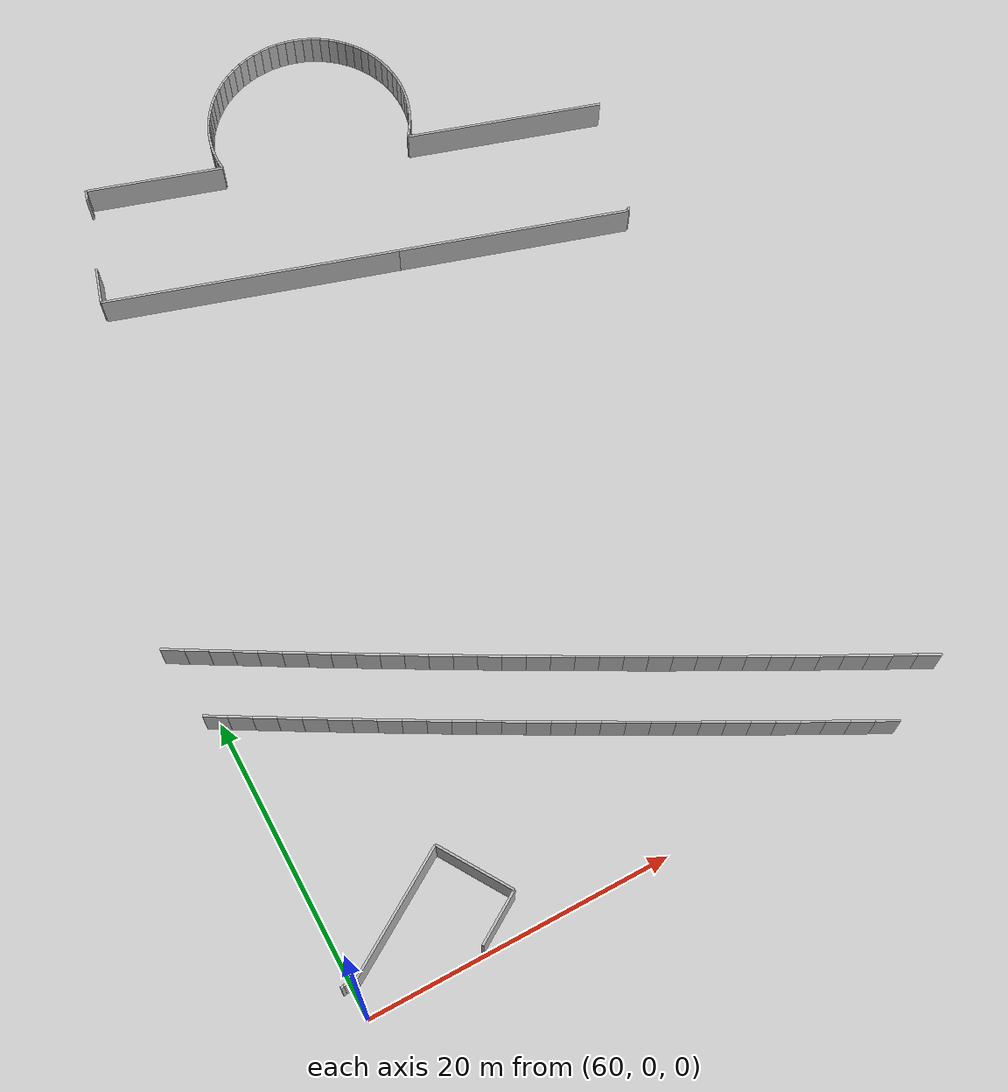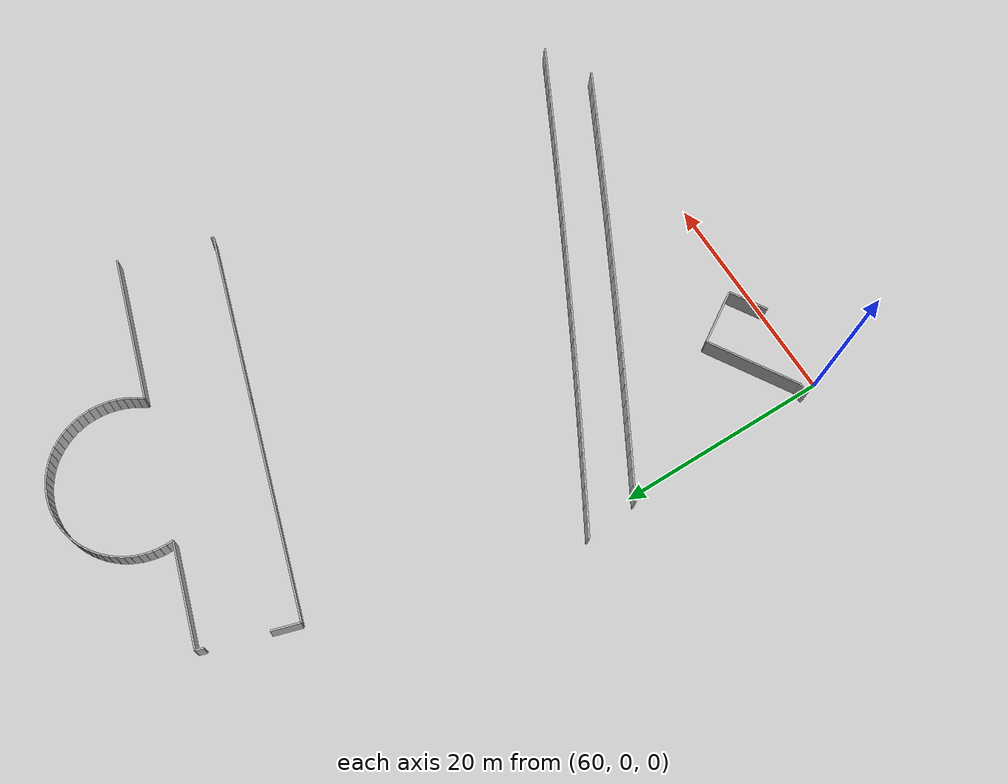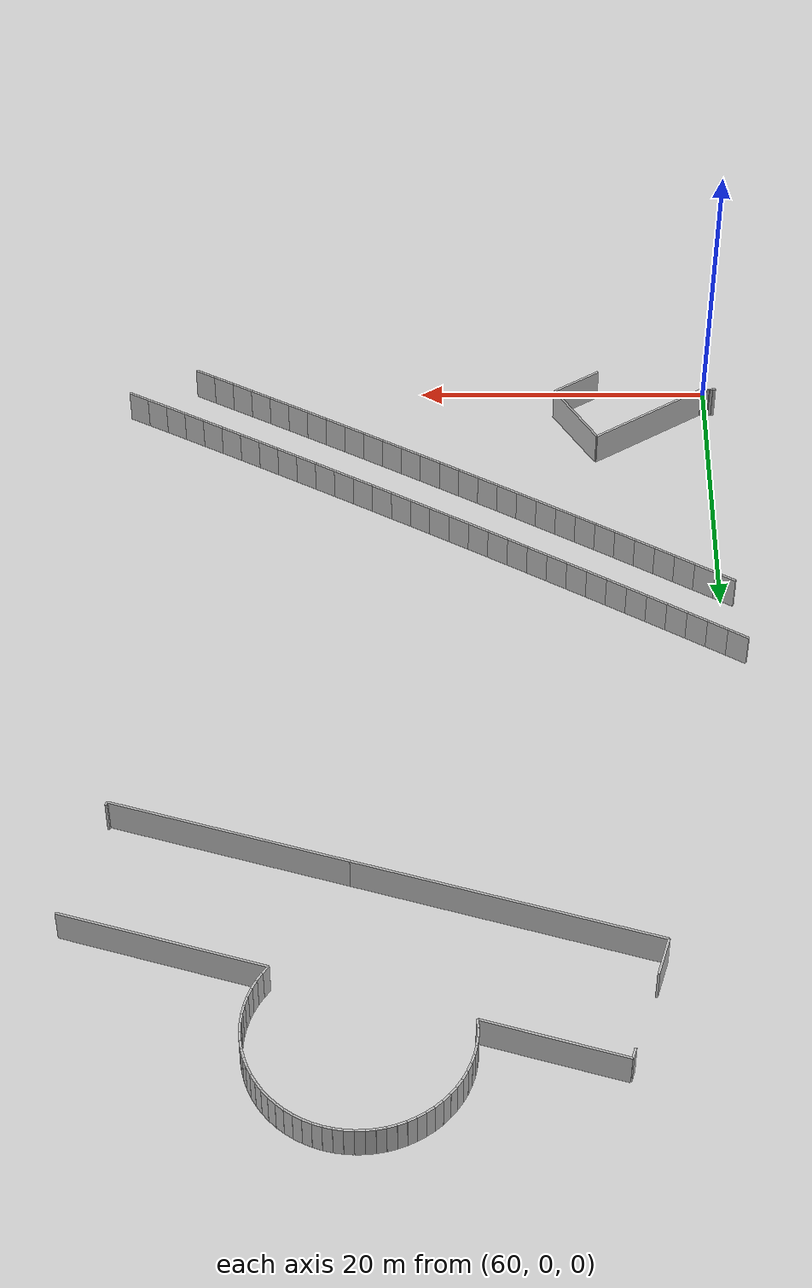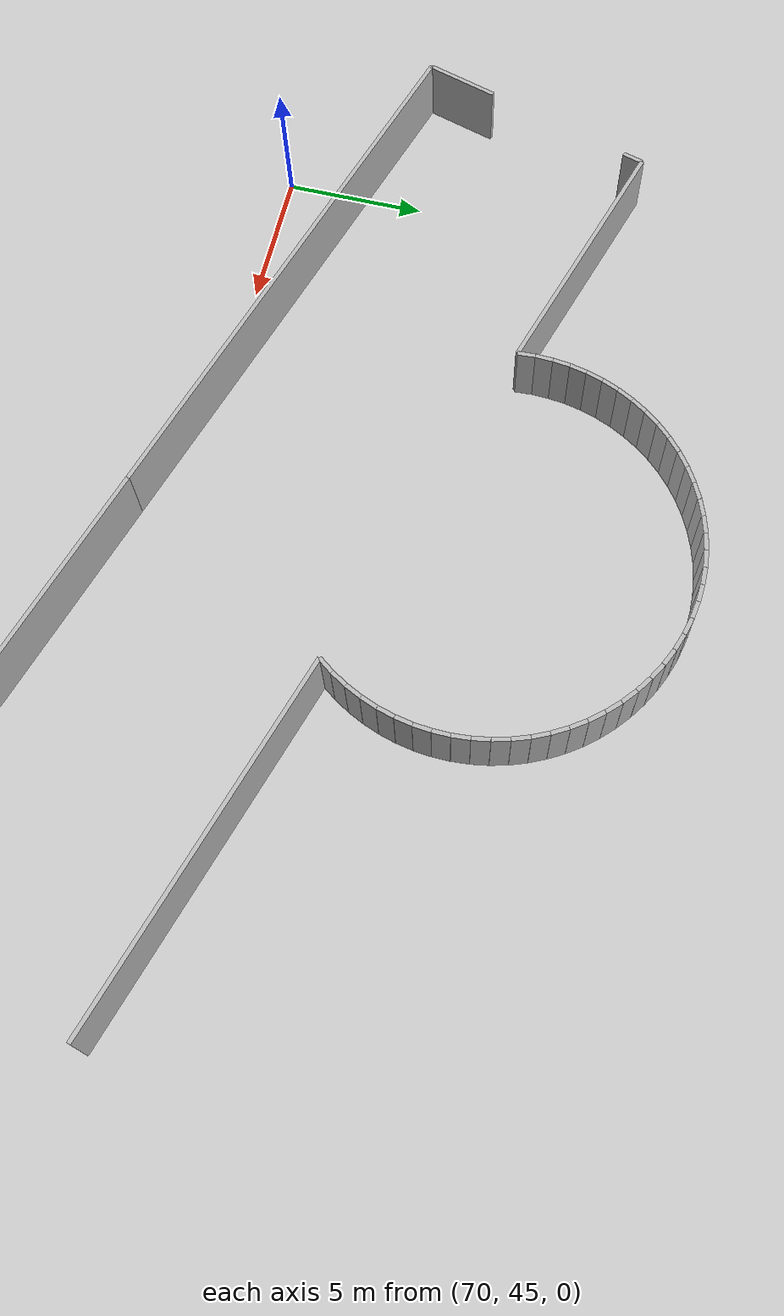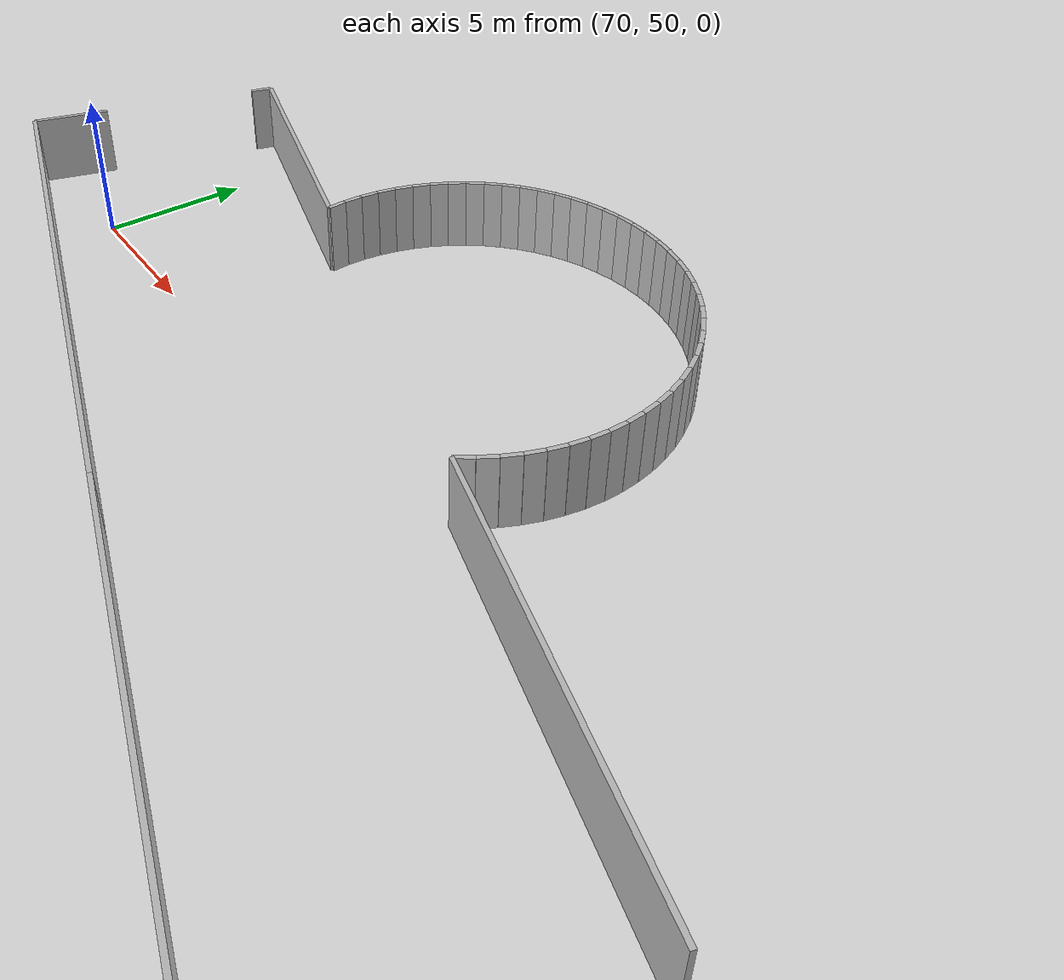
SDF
<sdf version="1.6">
 <model name="sps_0603">
  <static>1</static>
  <allow_auto_disable>0</allow_auto_disable>
  <link name="Wall18">
   <collision name="collision"><geometry><box><size>0.750779 0.15 2.5</size></box></geometry></collision>
   <visual name="visual">
    <geometry><box><size>0.750779 0.15 2.5</size></box></geometry>
    <transparency>0.0</transparency>
   </visual>
   <pose>67.673 57.5155 1.25 0 -0 1.29894</pose>
  </link>
  <link name="Wall277">
   <collision name="collision"><geometry><box><size>2.64986 0.15 2.5</size></box></geometry></collision>
   <visual name="visual">
    <geometry><box><size>2.64986 0.15 2.5</size></box></geometry>
    <transparency>0.0</transparency>
   </visual>
   <pose>65.5798 50.6267 1.25 0 -0 1.28343</pose>
  </link>
  <link name="Wall346">
   <collision name="collision"><geometry><box><size>9.41379 0.15 2.5</size></box></geometry></collision>
   <visual name="visual">
    <geometry><box><size>9.41379 0.15 2.5</size></box></geometry>
    <transparency>0.0</transparency>
   </visual>
   <pose>72.2803 56.5183 1.25 0 -0 2.84874</pose>
  </link>
  <link name="Wall348">
   <collision name="collision"><geometry><box><size>13.6171 0.15 2.5</size></box></geometry></collision>
   <visual name="visual">
    <geometry><box><size>13.6171 0.15 2.5</size></box></geometry>
    <transparency>0.0</transparency>
   </visual>
   <pose>95.7215 49.4496 1.25 0 -0 2.84871</pose>
  </link>
  <link name="Wall521">
   <collision name="collision"><geometry><box><size>0.246303 0.15 2.5</size></box></geometry></collision>
   <visual name="visual">
    <geometry><box><size>0.246303 0.15 2.5</size></box></geometry>
    <transparency>0.0</transparency>
   </visual>
   <pose>99.7046 39.0806 1.25 0 0 -1.86418</pose>
  </link>
  <link name="Wall605">
   <collision name="collision"><geometry><box><size>15.8757 0.15 2.5</size></box></geometry></collision>
   <visual name="visual">
    <geometry><box><size>15.8757 0.15 2.5</size></box></geometry>
    <transparency>0.0</transparency>
   </visual>
   <pose>92.0692 41.2546 1.25 0 -0 2.8487</pose>
  </link>
  <link name="Wall606">
   <collision name="collision"><geometry><box><size>20.1221 0.15 2.5</size></box></geometry></collision>
   <visual name="visual">
    <geometry><box><size>20.1221 0.15 2.5</size></box></geometry>
    <transparency>0.0</transparency>
   </visual>
   <pose>74.8368 46.4512 1.25 0 -0 2.8487</pose>
  </link>
  <link name="Wall2468">
   <collision name="collision"><geometry><box><size>3.67519 0.15 2.5</size></box></geometry></collision>
   <visual name="visual">
    <geometry><box><size>3.67519 0.15 2.5</size></box></geometry>
    <transparency>0.0</transparency>
   </visual>
   <pose>69.1415 1.16109 1.25 0 0 -2.58435</pose>
  </link>
  <link name="Wall2529">
   <collision name="collision"><geometry><box><size>0.205313 0.15 2.5</size></box></geometry></collision>
   <visual name="visual">
    <geometry><box><size>0.205313 0.15 2.5</size></box></geometry>
    <transparency>0.0</transparency>
   </visual>
   <pose>59.4652 1.9247 1.25 0 -0 0.12878</pose>
  </link>
  <link name="Wall2530">
   <collision name="collision"><geometry><box><size>0.205328 0.15 2.5</size></box></geometry></collision>
   <visual name="visual">
    <geometry><box><size>0.205328 0.15 2.5</size></box></geometry>
    <transparency>0.0</transparency>
   </visual>
   <pose>59.6693 1.94658 1.25 0 -0 0.0848199</pose>
  </link>
  <link name="Wall2531">
   <collision name="collision"><geometry><box><size>0.0512757 0.15 2.5</size></box></geometry></collision>
   <visual name="visual">
    <geometry><box><size>0.0512757 0.15 2.5</size></box></geometry>
    <transparency>0.0</transparency>
   </visual>
   <pose>59.7972 1.95659 1.25 0 -0 0.0512067</pose>
  </link>
  <link name="Wall2532">
   <collision name="collision"><geometry><box><size>0.188316 0.15 2.5</size></box></geometry></collision>
   <visual name="visual">
    <geometry><box><size>0.188316 0.15 2.5</size></box></geometry>
    <transparency>0.0</transparency>
   </visual>
   <pose>59.917 1.96071 1.25 0 -0 0.0298225</pose>
  </link>
  <link name="Wall2533">
   <collision name="collision"><geometry><box><size>0.188004 0.15 2.5</size></box></geometry></collision>
   <visual name="visual">
    <geometry><box><size>0.188004 0.15 2.5</size></box></geometry>
    <transparency>0.0</transparency>
   </visual>
   <pose>60.1051 1.96229 1.25 0 0 -0.0129863</pose>
  </link>
  <link name="Wall2534">
   <collision name="collision"><geometry><box><size>0.188059 0.15 2.5</size></box></geometry></collision>
   <visual name="visual">
    <geometry><box><size>0.188059 0.15 2.5</size></box></geometry>
    <transparency>0.0</transparency>
   </visual>
   <pose>60.293 1.95619 1.25 0 0 -0.0519519</pose>
  </link>
  <link name="Wall2535">
   <collision name="collision"><geometry><box><size>8.85031 0.15 2.5</size></box></geometry></collision>
   <visual name="visual">
    <geometry><box><size>8.85031 0.15 2.5</size></box></geometry>
    <transparency>0.0</transparency>
   </visual>
   <pose>64.1428 4.29109 1.25 0 -0 0.557123</pose>
  </link>
  <link name="Wall2536">
   <collision name="collision"><geometry><box><size>5.29948 0.15 2.5</size></box></geometry></collision>
   <visual name="visual">
    <geometry><box><size>5.29948 0.15 2.5</size></box></geometry>
    <transparency>0.0</transparency>
   </visual>
   <pose>69.2999 4.38188 1.25 0 0 -1.01364</pose>
  </link>
  <link name="Wall4809">
   <collision name="collision"><geometry><box><size>0.623304 0.15 2.5</size></box></geometry></collision>
   <visual name="visual">
    <geometry><box><size>0.623304 0.15 2.5</size></box></geometry>
    <transparency>0.0</transparency>
   </visual>
   <pose>86.0643 62.4152 1.25 0 0 -0.332465</pose>
  </link>
  <link name="Wall4810">
   <collision name="collision"><geometry><box><size>0.62325 0.15 2.5</size></box></geometry></collision>
   <visual name="visual">
    <geometry><box><size>0.62325 0.15 2.5</size></box></geometry>
    <transparency>0.0</transparency>
   </visual>
   <pose>86.6431 62.1857 1.25 0 0 -0.422599</pose>
  </link>
  <link name="Wall4811">
   <collision name="collision"><geometry><box><size>0.623227 0.15 2.5</size></box></geometry></collision>
   <visual name="visual">
    <geometry><box><size>0.623227 0.15 2.5</size></box></geometry>
    <transparency>0.0</transparency>
   </visual>
   <pose>87.199 61.9053 1.25 0 0 -0.511712</pose>
  </link>
  <link name="Wall4812">
   <collision name="collision"><geometry><box><size>0.623388 0.15 2.5</size></box></geometry></collision>
   <visual name="visual">
    <geometry><box><size>0.623388 0.15 2.5</size></box></geometry>
    <transparency>0.0</transparency>
   </visual>
   <pose>87.7276 61.5762 1.25 0 0 -0.602015</pose>
  </link>
  <link name="Wall4813">
   <collision name="collision"><geometry><box><size>0.623144 0.15 2.5</size></box></geometry></collision>
   <visual name="visual">
    <geometry><box><size>0.623144 0.15 2.5</size></box></geometry>
    <transparency>0.0</transparency>
   </visual>
   <pose>88.2244 61.201 1.25 0 0 -0.691553</pose>
  </link>
  <link name="Wall4814">
   <collision name="collision"><geometry><box><size>0.623126 0.15 2.5</size></box></geometry></collision>
   <visual name="visual">
    <geometry><box><size>0.623126 0.15 2.5</size></box></geometry>
    <transparency>0.0</transparency>
   </visual>
   <pose>88.6857 60.7829 1.25 0 0 -0.781242</pose>
  </link>
  <link name="Wall4815">
   <collision name="collision"><geometry><box><size>0.623368 0.15 2.5</size></box></geometry></collision>
   <visual name="visual">
    <geometry><box><size>0.623368 0.15 2.5</size></box></geometry>
    <transparency>0.0</transparency>
   </visual>
   <pose>89.1077 60.3251 1.25 0 0 -0.870868</pose>
  </link>
  <link name="Wall4816">
   <collision name="collision"><geometry><box><size>0.62334 0.15 2.5</size></box></geometry></collision>
   <visual name="visual">
    <geometry><box><size>0.62334 0.15 2.5</size></box></geometry>
    <transparency>0.0</transparency>
   </visual>
   <pose>89.4869 59.8312 1.25 0 0 -0.960985</pose>
  </link>
  <link name="Wall4817">
   <collision name="collision"><geometry><box><size>0.623285 0.15 2.5</size></box></geometry></collision>
   <visual name="visual">
    <geometry><box><size>0.623285 0.15 2.5</size></box></geometry>
    <transparency>0.0</transparency>
   </visual>
   <pose>89.8203 59.3053 1.25 0 0 -1.05058</pose>
  </link>
  <link name="Wall4818">
   <collision name="collision"><geometry><box><size>0.623255 0.15 2.5</size></box></geometry></collision>
   <visual name="visual">
    <geometry><box><size>0.623255 0.15 2.5</size></box></geometry>
    <transparency>0.0</transparency>
   </visual>
   <pose>90.1053 58.7517 1.25 0 0 -1.14013</pose>
  </link>
  <link name="Wall4819">
   <collision name="collision"><geometry><box><size>0.623205 0.15 2.5</size></box></geometry></collision>
   <visual name="visual">
    <geometry><box><size>0.623205 0.15 2.5</size></box></geometry>
    <transparency>0.0</transparency>
   </visual>
   <pose>90.3395 58.1748 1.25 0 0 -1.23018</pose>
  </link>
  <link name="Wall4820">
   <collision name="collision"><geometry><box><size>0.622262 0.15 2.5</size></box></geometry></collision>
   <visual name="visual">
    <geometry><box><size>0.622262 0.15 2.5</size></box></geometry>
    <transparency>0.0</transparency>
   </visual>
   <pose>90.5207 57.5797 1.25 0 0 -1.32032</pose>
  </link>
  <link name="Wall4821">
   <collision name="collision"><geometry><box><size>0.622379 0.15 2.5</size></box></geometry></collision>
   <visual name="visual">
    <geometry><box><size>0.622379 0.15 2.5</size></box></geometry>
    <transparency>0.0</transparency>
   </visual>
   <pose>90.6482 56.9712 1.25 0 0 -1.40847</pose>
  </link>
  <link name="Wall4822">
   <collision name="collision"><geometry><box><size>0.622337 0.15 2.5</size></box></geometry></collision>
   <visual name="visual">
    <geometry><box><size>0.622337 0.15 2.5</size></box></geometry>
    <transparency>0.0</transparency>
   </visual>
   <pose>90.7216 56.3538 1.25 0 0 -1.49619</pose>
  </link>
  <link name="Wall4823">
   <collision name="collision"><geometry><box><size>0.622435 0.15 2.5</size></box></geometry></collision>
   <visual name="visual">
    <geometry><box><size>0.622435 0.15 2.5</size></box></geometry>
    <transparency>0.0</transparency>
   </visual>
   <pose>90.7405 55.7323 1.25 0 0 -1.58462</pose>
  </link>
  <link name="Wall4824">
   <collision name="collision"><geometry><box><size>0.622215 0.15 2.5</size></box></geometry></collision>
   <visual name="visual">
    <geometry><box><size>0.622215 0.15 2.5</size></box></geometry>
    <transparency>0.0</transparency>
   </visual>
   <pose>90.7047 55.1116 1.25 0 0 -1.6722</pose>
  </link>
  <link name="Wall4825">
   <collision name="collision"><geometry><box><size>0.622373 0.15 2.5</size></box></geometry></collision>
   <visual name="visual">
    <geometry><box><size>0.622373 0.15 2.5</size></box></geometry>
    <transparency>0.0</transparency>
   </visual>
   <pose>90.6146 54.4965 1.25 0 0 -1.76052</pose>
  </link>
  <link name="Wall4826">
   <collision name="collision"><geometry><box><size>0.622357 0.15 2.5</size></box></geometry></collision>
   <visual name="visual">
    <geometry><box><size>0.622357 0.15 2.5</size></box></geometry>
    <transparency>0.0</transparency>
   </visual>
   <pose>90.4707 53.8916 1.25 0 0 -1.84815</pose>
  </link>
  <link name="Wall4827">
   <collision name="collision"><geometry><box><size>0.622346 0.15 2.5</size></box></geometry></collision>
   <visual name="visual">
    <geometry><box><size>0.622346 0.15 2.5</size></box></geometry>
    <transparency>0.0</transparency>
   </visual>
   <pose>90.2742 53.3017 1.25 0 0 -1.93657</pose>
  </link>
  <link name="Wall4828">
   <collision name="collision"><geometry><box><size>0.622321 0.15 2.5</size></box></geometry></collision>
   <visual name="visual">
    <geometry><box><size>0.622321 0.15 2.5</size></box></geometry>
    <transparency>0.0</transparency>
   </visual>
   <pose>90.0266 52.7314 1.25 0 0 -2.02418</pose>
  </link>
  <link name="Wall4829">
   <collision name="collision"><geometry><box><size>0.622426 0.15 2.5</size></box></geometry></collision>
   <visual name="visual">
    <geometry><box><size>0.622426 0.15 2.5</size></box></geometry>
    <transparency>0.0</transparency>
   </visual>
   <pose>89.7299 52.185 1.25 0 0 -2.11228</pose>
  </link>
  <link name="Wall4830">
   <collision name="collision"><geometry><box><size>0.622433 0.15 2.5</size></box></geometry></collision>
   <visual name="visual">
    <geometry><box><size>0.622433 0.15 2.5</size></box></geometry>
    <transparency>0.0</transparency>
   </visual>
   <pose>89.3862 51.6668 1.25 0 0 -2.20067</pose>
  </link>
  <link name="Wall8282">
   <collision name="collision"><geometry><box><size>0.622446 0.15 2.5</size></box></geometry></collision>
   <visual name="visual">
    <geometry><box><size>0.622446 0.15 2.5</size></box></geometry>
    <transparency>0.0</transparency>
   </visual>
   <pose>76.7704 55.4703 1.25 0 -0 1.62348</pose>
  </link>
  <link name="Wall8283">
   <collision name="collision"><geometry><box><size>0.622618 0.15 2.5</size></box></geometry></collision>
   <visual name="visual">
    <geometry><box><size>0.622618 0.15 2.5</size></box></geometry>
    <transparency>0.0</transparency>
   </visual>
   <pose>76.7656 56.0922 1.25 0 -0 1.53383</pose>
  </link>
  <link name="Wall8284">
   <collision name="collision"><geometry><box><size>0.622598 0.15 2.5</size></box></geometry></collision>
   <visual name="visual">
    <geometry><box><size>0.622598 0.15 2.5</size></box></geometry>
    <transparency>0.0</transparency>
   </visual>
   <pose>76.8164 56.7121 1.25 0 -0 1.44419</pose>
  </link>
  <link name="Wall8285">
   <collision name="collision"><geometry><box><size>0.622486 0.15 2.5</size></box></geometry></collision>
   <visual name="visual">
    <geometry><box><size>0.622486 0.15 2.5</size></box></geometry>
    <transparency>0.0</transparency>
   </visual>
   <pose>76.9224 57.3249 1.25 0 -0 1.35488</pose>
  </link>
  <link name="Wall8286">
   <collision name="collision"><geometry><box><size>0.622514 0.15 2.5</size></box></geometry></collision>
   <visual name="visual">
    <geometry><box><size>0.622514 0.15 2.5</size></box></geometry>
    <transparency>0.0</transparency>
   </visual>
   <pose>77.0828 57.9257 1.25 0 -0 1.26464</pose>
  </link>
  <link name="Wall8287">
   <collision name="collision"><geometry><box><size>0.62262 0.15 2.5</size></box></geometry></collision>
   <visual name="visual">
    <geometry><box><size>0.62262 0.15 2.5</size></box></geometry>
    <transparency>0.0</transparency>
   </visual>
   <pose>77.2966 58.5098 1.25 0 -0 1.17542</pose>
  </link>
  <link name="Wall8288">
   <collision name="collision"><geometry><box><size>0.62249 0.15 2.5</size></box></geometry></collision>
   <visual name="visual">
    <geometry><box><size>0.62249 0.15 2.5</size></box></geometry>
    <transparency>0.0</transparency>
   </visual>
   <pose>77.5617 59.0724 1.25 0 -0 1.08544</pose>
  </link>
  <link name="Wall8289">
   <collision name="collision"><geometry><box><size>0.622621 0.15 2.5</size></box></geometry></collision>
   <visual name="visual">
    <geometry><box><size>0.622621 0.15 2.5</size></box></geometry>
    <transparency>0.0</transparency>
   </visual>
   <pose>77.8761 59.609 1.25 0 -0 0.996225</pose>
  </link>
  <link name="Wall8290">
   <collision name="collision"><geometry><box><size>0.622402 0.15 2.5</size></box></geometry></collision>
   <visual name="visual">
    <geometry><box><size>0.622402 0.15 2.5</size></box></geometry>
    <transparency>0.0</transparency>
   </visual>
   <pose>78.2371 60.1153 1.25 0 -0 0.906347</pose>
  </link>
  <link name="Wall8291">
   <collision name="collision"><geometry><box><size>0.622688 0.15 2.5</size></box></geometry></collision>
   <visual name="visual">
    <geometry><box><size>0.622688 0.15 2.5</size></box></geometry>
    <transparency>0.0</transparency>
   </visual>
   <pose>78.6422 60.5872 1.25 0 -0 0.816523</pose>
  </link>
  <link name="Wall8292">
   <collision name="collision"><geometry><box><size>0.622491 0.15 2.5</size></box></geometry></collision>
   <visual name="visual">
    <geometry><box><size>0.622491 0.15 2.5</size></box></geometry>
    <transparency>0.0</transparency>
   </visual>
   <pose>79.0879 61.021 1.25 0 -0 0.727196</pose>
  </link>
  <link name="Wall8293">
   <collision name="collision"><geometry><box><size>0.621609 0.15 2.5</size></box></geometry></collision>
   <visual name="visual">
    <geometry><box><size>0.621609 0.15 2.5</size></box></geometry>
    <transparency>0.0</transparency>
   </visual>
   <pose>79.5704 61.4127 1.25 0 -0 0.636687</pose>
  </link>
  <link name="Wall8294">
   <collision name="collision"><geometry><box><size>0.621736 0.15 2.5</size></box></geometry></collision>
   <visual name="visual">
    <geometry><box><size>0.621736 0.15 2.5</size></box></geometry>
    <transparency>0.0</transparency>
   </visual>
   <pose>80.0855 61.7597 1.25 0 -0 0.548922</pose>
  </link>
  <link name="Wall8295">
   <collision name="collision"><geometry><box><size>0.621609 0.15 2.5</size></box></geometry></collision>
   <visual name="visual">
    <geometry><box><size>0.621609 0.15 2.5</size></box></geometry>
    <transparency>0.0</transparency>
   </visual>
   <pose>80.6291 62.0601 1.25 0 -0 0.460837</pose>
  </link>
  <link name="Wall8296">
   <collision name="collision"><geometry><box><size>0.621559 0.15 2.5</size></box></geometry></collision>
   <visual name="visual">
    <geometry><box><size>0.621559 0.15 2.5</size></box></geometry>
    <transparency>0.0</transparency>
   </visual>
   <pose>81.1968 62.3116 1.25 0 -0 0.373103</pose>
  </link>
  <link name="Wall8297">
   <collision name="collision"><geometry><box><size>0.621575 0.15 2.5</size></box></geometry></collision>
   <visual name="visual">
    <geometry><box><size>0.621575 0.15 2.5</size></box></geometry>
    <transparency>0.0</transparency>
   </visual>
   <pose>81.7844 62.5124 1.25 0 -0 0.285381</pose>
  </link>
  <link name="Wall8298">
   <collision name="collision"><geometry><box><size>0.621673 0.15 2.5</size></box></geometry></collision>
   <visual name="visual">
    <geometry><box><size>0.621673 0.15 2.5</size></box></geometry>
    <transparency>0.0</transparency>
   </visual>
   <pose>82.3875 62.6608 1.25 0 -0 0.197242</pose>
  </link>
  <link name="Wall8299">
   <collision name="collision"><geometry><box><size>0.62169 0.15 2.5</size></box></geometry></collision>
   <visual name="visual">
    <geometry><box><size>0.62169 0.15 2.5</size></box></geometry>
    <transparency>0.0</transparency>
   </visual>
   <pose>83.0013 62.7556 1.25 0 -0 0.109291</pose>
  </link>
  <link name="Wall8300">
   <collision name="collision"><geometry><box><size>0.621543 0.15 2.5</size></box></geometry></collision>
   <visual name="visual">
    <geometry><box><size>0.621543 0.15 2.5</size></box></geometry>
    <transparency>0.0</transparency>
   </visual>
   <pose>83.621 62.7962 1.25 0 -0 0.0215073</pose>
  </link>
  <link name="Wall8301">
   <collision name="collision"><geometry><box><size>0.621557 0.15 2.5</size></box></geometry></collision>
   <visual name="visual">
    <geometry><box><size>0.621557 0.15 2.5</size></box></geometry>
    <transparency>0.0</transparency>
   </visual>
   <pose>84.2418 62.7822 1.25 0 0 -0.066627</pose>
  </link>
  <link name="Wall8302">
   <collision name="collision"><geometry><box><size>0.621803 0.15 2.5</size></box></geometry></collision>
   <visual name="visual">
    <geometry><box><size>0.621803 0.15 2.5</size></box></geometry>
    <transparency>0.0</transparency>
   </visual>
   <pose>84.8591 62.7138 1.25 0 0 -0.15403</pose>
  </link>
  <link name="Wall8303">
   <collision name="collision"><geometry><box><size>0.621559 0.15 2.5</size></box></geometry></collision>
   <visual name="visual">
    <geometry><box><size>0.621559 0.15 2.5</size></box></geometry>
    <transparency>0.0</transparency>
   </visual>
   <pose>85.468 62.5915 1.25 0 0 -0.242359</pose>
  </link>
  <link name="Wall8719">
   <collision name="collision"><geometry><box><size>1.49898 0.15 2.5</size></box></geometry></collision>
   <visual name="visual">
    <geometry><box><size>1.49898 0.15 2.5</size></box></geometry>
    <transparency>0.0</transparency>
   </visual>
   <pose>59.8464 19.8308 1.25 0 0 -0.521969</pose>
  </link>
  <link name="Wall8720">
   <collision name="collision"><geometry><box><size>1.499 0.15 2.5</size></box></geometry></collision>
   <visual name="visual">
    <geometry><box><size>1.499 0.15 2.5</size></box></geometry>
    <transparency>0.0</transparency>
   </visual>
   <pose>61.1463 19.0843 1.25 0 0 -0.520601</pose>
  </link>
  <link name="Wall8721">
   <collision name="collision"><geometry><box><size>1.49883 0.15 2.5</size></box></geometry></collision>
   <visual name="visual">
    <geometry><box><size>1.49883 0.15 2.5</size></box></geometry>
    <transparency>0.0</transparency>
   </visual>
   <pose>62.4473 18.3399 1.25 0 0 -0.518838</pose>
  </link>
  <link name="Wall8722">
   <collision name="collision"><geometry><box><size>1.49898 0.15 2.5</size></box></geometry></collision>
   <visual name="visual">
    <geometry><box><size>1.49898 0.15 2.5</size></box></geometry>
    <transparency>0.0</transparency>
   </visual>
   <pose>63.7494 17.5976 1.25 0 0 -0.517373</pose>
  </link>
  <link name="Wall8723">
   <collision name="collision"><geometry><box><size>1.4988 0.15 2.5</size></box></geometry></collision>
   <visual name="visual">
    <geometry><box><size>1.4988 0.15 2.5</size></box></geometry>
    <transparency>0.0</transparency>
   </visual>
   <pose>65.0528 16.8573 1.25 0 0 -0.515757</pose>
  </link>
  <link name="Wall8724">
   <collision name="collision"><geometry><box><size>1.49897 0.15 2.5</size></box></geometry></collision>
   <visual name="visual">
    <geometry><box><size>1.49897 0.15 2.5</size></box></geometry>
    <transparency>0.0</transparency>
   </visual>
   <pose>66.3573 16.1191 1.25 0 0 -0.514146</pose>
  </link>
  <link name="Wall8725">
   <collision name="collision"><geometry><box><size>1.49908 0.15 2.5</size></box></geometry></collision>
   <visual name="visual">
    <geometry><box><size>1.49908 0.15 2.5</size></box></geometry>
    <transparency>0.0</transparency>
   </visual>
   <pose>67.663 15.3829 1.25 0 0 -0.512611</pose>
  </link>
  <link name="Wall8726">
   <collision name="collision"><geometry><box><size>1.49888 0.15 2.5</size></box></geometry></collision>
   <visual name="visual">
    <geometry><box><size>1.49888 0.15 2.5</size></box></geometry>
    <transparency>0.0</transparency>
   </visual>
   <pose>68.97 14.6488 1.25 0 0 -0.510959</pose>
  </link>
  <link name="Wall8727">
   <collision name="collision"><geometry><box><size>1.49893 0.15 2.5</size></box></geometry></collision>
   <visual name="visual">
    <geometry><box><size>1.49893 0.15 2.5</size></box></geometry>
    <transparency>0.0</transparency>
   </visual>
   <pose>70.278 13.9168 1.25 0 0 -0.509444</pose>
  </link>
  <link name="Wall8728">
   <collision name="collision"><geometry><box><size>1.49897 0.15 2.5</size></box></geometry></collision>
   <visual name="visual">
    <geometry><box><size>1.49897 0.15 2.5</size></box></geometry>
    <transparency>0.0</transparency>
   </visual>
   <pose>71.5871 13.1868 1.25 0 0 -0.507893</pose>
  </link>
  <link name="Wall8729">
   <collision name="collision"><geometry><box><size>1.49886 0.15 2.5</size></box></geometry></collision>
   <visual name="visual">
    <geometry><box><size>1.49886 0.15 2.5</size></box></geometry>
    <transparency>0.0</transparency>
   </visual>
   <pose>72.8975 12.4589 1.25 0 0 -0.506256</pose>
  </link>
  <link name="Wall8730">
   <collision name="collision"><geometry><box><size>1.49893 0.15 2.5</size></box></geometry></collision>
   <visual name="visual">
    <geometry><box><size>1.49893 0.15 2.5</size></box></geometry>
    <transparency>0.0</transparency>
   </visual>
   <pose>74.2089 11.733 1.25 0 0 -0.504832</pose>
  </link>
  <link name="Wall8731">
   <collision name="collision"><geometry><box><size>1.49891 0.15 2.5</size></box></geometry></collision>
   <visual name="visual">
    <geometry><box><size>1.49891 0.15 2.5</size></box></geometry>
    <transparency>0.0</transparency>
   </visual>
   <pose>75.5214 11.0092 1.25 0 0 -0.503029</pose>
  </link>
  <link name="Wall8732">
   <collision name="collision"><geometry><box><size>1.49907 0.15 2.5</size></box></geometry></collision>
   <visual name="visual">
    <geometry><box><size>1.49907 0.15 2.5</size></box></geometry>
    <transparency>0.0</transparency>
   </visual>
   <pose>76.8353 10.2875 1.25 0 0 -0.501621</pose>
  </link>
  <link name="Wall8733">
   <collision name="collision"><geometry><box><size>1.49897 0.15 2.5</size></box></geometry></collision>
   <visual name="visual">
    <geometry><box><size>1.49897 0.15 2.5</size></box></geometry>
    <transparency>0.0</transparency>
   </visual>
   <pose>78.1503 9.56789 1.25 0 0 -0.499802</pose>
  </link>
  <link name="Wall8734">
   <collision name="collision"><geometry><box><size>1.49898 0.15 2.5</size></box></geometry></collision>
   <visual name="visual">
    <geometry><box><size>1.49898 0.15 2.5</size></box></geometry>
    <transparency>0.0</transparency>
   </visual>
   <pose>79.4664 8.85039 1.25 0 0 -0.498453</pose>
  </link>
  <link name="Wall8735">
   <collision name="collision"><geometry><box><size>1.49889 0.15 2.5</size></box></geometry></collision>
   <visual name="visual">
    <geometry><box><size>1.49889 0.15 2.5</size></box></geometry>
    <transparency>0.0</transparency>
   </visual>
   <pose>80.7836 8.13499 1.25 0 0 -0.496633</pose>
  </link>
  <link name="Wall8736">
   <collision name="collision"><geometry><box><size>1.4989 0.15 2.5</size></box></geometry></collision>
   <visual name="visual">
    <geometry><box><size>1.4989 0.15 2.5</size></box></geometry>
    <transparency>0.0</transparency>
   </visual>
   <pose>82.1019 7.42171 1.25 0 0 -0.495284</pose>
  </link>
  <link name="Wall8737">
   <collision name="collision"><geometry><box><size>1.49894 0.15 2.5</size></box></geometry></collision>
   <visual name="visual">
    <geometry><box><size>1.49894 0.15 2.5</size></box></geometry>
    <transparency>0.0</transparency>
   </visual>
   <pose>83.4213 6.7104 1.25 0 0 -0.493608</pose>
  </link>
  <link name="Wall8738">
   <collision name="collision"><geometry><box><size>1.49884 0.15 2.5</size></box></geometry></collision>
   <visual name="visual">
    <geometry><box><size>1.49884 0.15 2.5</size></box></geometry>
    <transparency>0.0</transparency>
   </visual>
   <pose>84.7418 6.0012 1.25 0 0 -0.492116</pose>
  </link>
  <link name="Wall8739">
   <collision name="collision"><geometry><box><size>1.49905 0.15 2.5</size></box></geometry></collision>
   <visual name="visual">
    <geometry><box><size>1.49905 0.15 2.5</size></box></geometry>
    <transparency>0.0</transparency>
   </visual>
   <pose>86.0634 5.29411 1.25 0 0 -0.490381</pose>
  </link>
  <link name="Wall8740">
   <collision name="collision"><geometry><box><size>1.49888 0.15 2.5</size></box></geometry></collision>
   <visual name="visual">
    <geometry><box><size>1.49888 0.15 2.5</size></box></geometry>
    <transparency>0.0</transparency>
   </visual>
   <pose>87.3863 4.5891 1.25 0 0 -0.488963</pose>
  </link>
  <link name="Wall8741">
   <collision name="collision"><geometry><box><size>1.49909 0.15 2.5</size></box></geometry></collision>
   <visual name="visual">
    <geometry><box><size>1.49909 0.15 2.5</size></box></geometry>
    <transparency>0.0</transparency>
   </visual>
   <pose>88.7102 3.88609 1.25 0 0 -0.48732</pose>
  </link>
  <link name="Wall8742">
   <collision name="collision"><geometry><box><size>1.4988 0.15 2.5</size></box></geometry></collision>
   <visual name="visual">
    <geometry><box><size>1.4988 0.15 2.5</size></box></geometry>
    <transparency>0.0</transparency>
   </visual>
   <pose>90.0351 3.18519 1.25 0 0 -0.485813</pose>
  </link>
  <link name="Wall8743">
   <collision name="collision"><geometry><box><size>1.49904 0.15 2.5</size></box></geometry></collision>
   <visual name="visual">
    <geometry><box><size>1.49904 0.15 2.5</size></box></geometry>
    <transparency>0.0</transparency>
   </visual>
   <pose>91.3613 2.48649 1.25 0 0 -0.484025</pose>
  </link>
  <link name="Wall8744">
   <collision name="collision"><geometry><box><size>1.49894 0.15 2.5</size></box></geometry></collision>
   <visual name="visual">
    <geometry><box><size>1.49894 0.15 2.5</size></box></geometry>
    <transparency>0.0</transparency>
   </visual>
   <pose>92.6886 1.7899 1.25 0 0 -0.482587</pose>
  </link>
  <link name="Wall8745">
   <collision name="collision"><geometry><box><size>1.49884 0.15 2.5</size></box></geometry></collision>
   <visual name="visual">
    <geometry><box><size>1.49884 0.15 2.5</size></box></geometry>
    <transparency>0.0</transparency>
   </visual>
   <pose>94.0168 1.09538 1.25 0 0 -0.480967</pose>
  </link>
  <link name="Wall8746">
   <collision name="collision"><geometry><box><size>1.49908 0.15 2.5</size></box></geometry></collision>
   <visual name="visual">
    <geometry><box><size>1.49908 0.15 2.5</size></box></geometry>
    <transparency>0.0</transparency>
   </visual>
   <pose>95.3462 0.402877 1.25 0 0 -0.479508</pose>
  </link>
  <link name="Wall9798">
   <collision name="collision"><geometry><box><size>1.4923 0.15 2.5</size></box></geometry></collision>
   <visual name="visual">
    <geometry><box><size>1.4923 0.15 2.5</size></box></geometry>
    <transparency>0.0</transparency>
   </visual>
   <pose>59.326 24.912 1.25 0 0 -0.525163</pose>
  </link>
  <link name="Wall9799">
   <collision name="collision"><geometry><box><size>1.49247 0.15 2.5</size></box></geometry></collision>
   <visual name="visual">
    <geometry><box><size>1.49247 0.15 2.5</size></box></geometry>
    <transparency>0.0</transparency>
   </visual>
   <pose>60.6179 24.1647 1.25 0 0 -0.523727</pose>
  </link>
  <link name="Wall9800">
   <collision name="collision"><geometry><box><size>1.49237 0.15 2.5</size></box></geometry></collision>
   <visual name="visual">
    <geometry><box><size>1.49237 0.15 2.5</size></box></geometry>
    <transparency>0.0</transparency>
   </visual>
   <pose>61.9108 23.4194 1.25 0 0 -0.522063</pose>
  </link>
  <link name="Wall9801">
   <collision name="collision"><geometry><box><size>1.49246 0.15 2.5</size></box></geometry></collision>
   <visual name="visual">
    <geometry><box><size>1.49246 0.15 2.5</size></box></geometry>
    <transparency>0.0</transparency>
   </visual>
   <pose>63.205 22.6762 1.25 0 0 -0.520521</pose>
  </link>
  <link name="Wall9802">
   <collision name="collision"><geometry><box><size>1.49224 0.15 2.5</size></box></geometry></collision>
   <visual name="visual">
    <geometry><box><size>1.49224 0.15 2.5</size></box></geometry>
    <transparency>0.0</transparency>
   </visual>
   <pose>64.5004 21.9351 1.25 0 0 -0.518862</pose>
  </link>
  <link name="Wall9803">
   <collision name="collision"><geometry><box><size>1.4925 0.15 2.5</size></box></geometry></collision>
   <visual name="visual">
    <geometry><box><size>1.4925 0.15 2.5</size></box></geometry>
    <transparency>0.0</transparency>
   </visual>
   <pose>65.7969 21.196 1.25 0 0 -0.517351</pose>
  </link>
  <link name="Wall9804">
   <collision name="collision"><geometry><box><size>1.49235 0.15 2.5</size></box></geometry></collision>
   <visual name="visual">
    <geometry><box><size>1.49235 0.15 2.5</size></box></geometry>
    <transparency>0.0</transparency>
   </visual>
   <pose>67.0946 20.4589 1.25 0 0 -0.515763</pose>
  </link>
  <link name="Wall9805">
   <collision name="collision"><geometry><box><size>1.49227 0.15 2.5</size></box></geometry></collision>
   <visual name="visual">
    <geometry><box><size>1.49227 0.15 2.5</size></box></geometry>
    <transparency>0.0</transparency>
   </visual>
   <pose>68.3934 19.724 1.25 0 0 -0.514098</pose>
  </link>
  <link name="Wall9806">
   <collision name="collision"><geometry><box><size>1.49244 0.15 2.5</size></box></geometry></collision>
   <visual name="visual">
    <geometry><box><size>1.49244 0.15 2.5</size></box></geometry>
    <transparency>0.0</transparency>
   </visual>
   <pose>69.6934 18.9911 1.25 0 0 -0.512628</pose>
  </link>
  <link name="Wall9807">
   <collision name="collision"><geometry><box><size>1.49243 0.15 2.5</size></box></geometry></collision>
   <visual name="visual">
    <geometry><box><size>1.49243 0.15 2.5</size></box></geometry>
    <transparency>0.0</transparency>
   </visual>
   <pose>70.9946 18.2602 1.25 0 0 -0.510944</pose>
  </link>
  <link name="Wall9808">
   <collision name="collision"><geometry><box><size>1.49238 0.15 2.5</size></box></geometry></collision>
   <visual name="visual">
    <geometry><box><size>1.49238 0.15 2.5</size></box></geometry>
    <transparency>0.0</transparency>
   </visual>
   <pose>72.2969 17.5313 1.25 0 0 -0.509553</pose>
  </link>
  <link name="Wall9809">
   <collision name="collision"><geometry><box><size>1.49257 0.15 2.5</size></box></geometry></collision>
   <visual name="visual">
    <geometry><box><size>1.49257 0.15 2.5</size></box></geometry>
    <transparency>0.0</transparency>
   </visual>
   <pose>73.6004 16.8044 1.25 0 0 -0.507845</pose>
  </link>
  <link name="Wall9810">
   <collision name="collision"><geometry><box><size>1.49245 0.15 2.5</size></box></geometry></collision>
   <visual name="visual">
    <geometry><box><size>1.49245 0.15 2.5</size></box></geometry>
    <transparency>0.0</transparency>
   </visual>
   <pose>74.9051 16.0796 1.25 0 0 -0.506348</pose>
  </link>
  <link name="Wall9811">
   <collision name="collision"><geometry><box><size>1.49242 0.15 2.5</size></box></geometry></collision>
   <visual name="visual">
    <geometry><box><size>1.49242 0.15 2.5</size></box></geometry>
    <transparency>0.0</transparency>
   </visual>
   <pose>76.2108 15.3569 1.25 0 0 -0.504628</pose>
  </link>
  <link name="Wall9812">
   <collision name="collision"><geometry><box><size>1.49239 0.15 2.5</size></box></geometry></collision>
   <visual name="visual">
    <geometry><box><size>1.49239 0.15 2.5</size></box></geometry>
    <transparency>0.0</transparency>
   </visual>
   <pose>77.5178 14.6363 1.25 0 0 -0.503146</pose>
  </link>
  <link name="Wall9813">
   <collision name="collision"><geometry><box><size>1.49234 0.15 2.5</size></box></geometry></collision>
   <visual name="visual">
    <geometry><box><size>1.49234 0.15 2.5</size></box></geometry>
    <transparency>0.0</transparency>
   </visual>
   <pose>78.8258 13.9178 1.25 0 0 -0.501481</pose>
  </link>
  <link name="Wall9814">
   <collision name="collision"><geometry><box><size>1.49245 0.15 2.5</size></box></geometry></collision>
   <visual name="visual">
    <geometry><box><size>1.49245 0.15 2.5</size></box></geometry>
    <transparency>0.0</transparency>
   </visual>
   <pose>80.135 13.2014 1.25 0 0 -0.499905</pose>
  </link>
  <link name="Wall9815">
   <collision name="collision"><geometry><box><size>1.49237 0.15 2.5</size></box></geometry></collision>
   <visual name="visual">
    <geometry><box><size>1.49237 0.15 2.5</size></box></geometry>
    <transparency>0.0</transparency>
   </visual>
   <pose>81.4453 12.487 1.25 0 0 -0.498443</pose>
  </link>
  <link name="Wall9816">
   <collision name="collision"><geometry><box><size>1.49237 0.15 2.5</size></box></geometry></collision>
   <visual name="visual">
    <geometry><box><size>1.49237 0.15 2.5</size></box></geometry>
    <transparency>0.0</transparency>
   </visual>
   <pose>82.7567 11.7747 1.25 0 0 -0.496722</pose>
  </link>
  <link name="Wall9817">
   <collision name="collision"><geometry><box><size>1.49238 0.15 2.5</size></box></geometry></collision>
   <visual name="visual">
    <geometry><box><size>1.49238 0.15 2.5</size></box></geometry>
    <transparency>0.0</transparency>
   </visual>
   <pose>84.0692 11.0644 1.25 0 0 -0.495368</pose>
  </link>
  <link name="Wall9818">
   <collision name="collision"><geometry><box><size>1.49246 0.15 2.5</size></box></geometry></collision>
   <visual name="visual">
    <geometry><box><size>1.49246 0.15 2.5</size></box></geometry>
    <transparency>0.0</transparency>
   </visual>
   <pose>85.3829 10.3562 1.25 0 0 -0.493482</pose>
  </link>
  <link name="Wall9819">
   <collision name="collision"><geometry><box><size>1.4924 0.15 2.5</size></box></geometry></collision>
   <visual name="visual">
    <geometry><box><size>1.4924 0.15 2.5</size></box></geometry>
    <transparency>0.0</transparency>
   </visual>
   <pose>86.6977 9.65019 1.25 0 0 -0.492019</pose>
  </link>
  <link name="Wall9820">
   <collision name="collision"><geometry><box><size>1.49236 0.15 2.5</size></box></geometry></collision>
   <visual name="visual">
    <geometry><box><size>1.49236 0.15 2.5</size></box></geometry>
    <transparency>0.0</transparency>
   </visual>
   <pose>88.0136 8.94618 1.25 0 0 -0.490501</pose>
  </link>
  <link name="Wall9821">
   <collision name="collision"><geometry><box><size>1.49249 0.15 2.5</size></box></geometry></collision>
   <visual name="visual">
    <geometry><box><size>1.49249 0.15 2.5</size></box></geometry>
    <transparency>0.0</transparency>
   </visual>
   <pose>89.3306 8.24419 1.25 0 0 -0.488925</pose>
  </link>
  <link name="Wall9822">
   <collision name="collision"><geometry><box><size>1.49232 0.15 2.5</size></box></geometry></collision>
   <visual name="visual">
    <geometry><box><size>1.49232 0.15 2.5</size></box></geometry>
    <transparency>0.0</transparency>
   </visual>
   <pose>90.6488 7.5443 1.25 0 0 -0.487318</pose>
  </link>
  <link name="Wall9823">
   <collision name="collision"><geometry><box><size>1.49241 0.15 2.5</size></box></geometry></collision>
   <visual name="visual">
    <geometry><box><size>1.49241 0.15 2.5</size></box></geometry>
    <transparency>0.0</transparency>
   </visual>
   <pose>91.9679 6.84651 1.25 0 0 -0.485762</pose>
  </link>
  <link name="Wall9824">
   <collision name="collision"><geometry><box><size>1.49233 0.15 2.5</size></box></geometry></collision>
   <visual name="visual">
    <geometry><box><size>1.49233 0.15 2.5</size></box></geometry>
    <transparency>0.0</transparency>
   </visual>
   <pose>93.2882 6.1508 1.25 0 0 -0.484171</pose>
  </link>
  <link name="Wall9825">
   <collision name="collision"><geometry><box><size>1.49244 0.15 2.5</size></box></geometry></collision>
   <visual name="visual">
    <geometry><box><size>1.49244 0.15 2.5</size></box></geometry>
    <transparency>0.0</transparency>
   </visual>
   <pose>94.6096 5.4572 1.25 0 0 -0.48256</pose>
  </link>
  <link name="Wall9826">
   <collision name="collision"><geometry><box><size>1.49232 0.15 2.5</size></box></geometry></collision>
   <visual name="visual">
    <geometry><box><size>1.49232 0.15 2.5</size></box></geometry>
    <transparency>0.0</transparency>
   </visual>
   <pose>95.9322 4.7657 1.25 0 0 -0.480988</pose>
  </link>
  <link name="Wall9827">
   <collision name="collision"><geometry><box><size>1.49247 0.15 2.5</size></box></geometry></collision>
   <visual name="visual">
    <geometry><box><size>1.49247 0.15 2.5</size></box></geometry>
    <transparency>0.0</transparency>
   </visual>
   <pose>97.2558 4.07628 1.25 0 0 -0.479413</pose>
  </link>
  <link name="Wall9828">
   <collision name="collision"><geometry><box><size>1.49241 0.15 2.5</size></box></geometry></collision>
   <visual name="visual">
    <geometry><box><size>1.49241 0.15 2.5</size></box></geometry>
    <transparency>0.0</transparency>
   </visual>
   <pose>98.5805 3.38887 1.25 0 0 -0.477914</pose>
  </link>
  <link name="Wall9829">
   <collision name="collision"><geometry><box><size>1.49249 0.15 2.5</size></box></geometry></collision>
   <visual name="visual">
    <geometry><box><size>1.49249 0.15 2.5</size></box></geometry>
    <transparency>0.0</transparency>
   </visual>
   <pose>99.9063 2.70357 1.25 0 0 -0.476231</pose>
  </link>
 </model>
</sdf>
